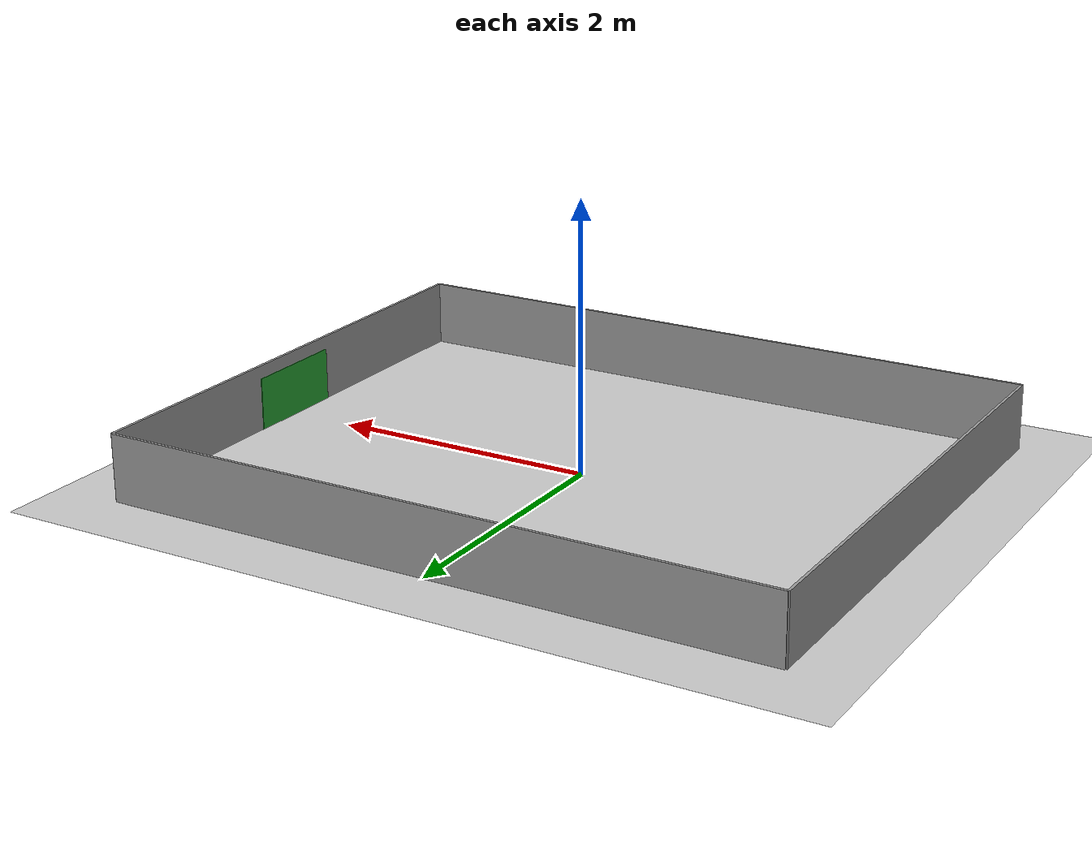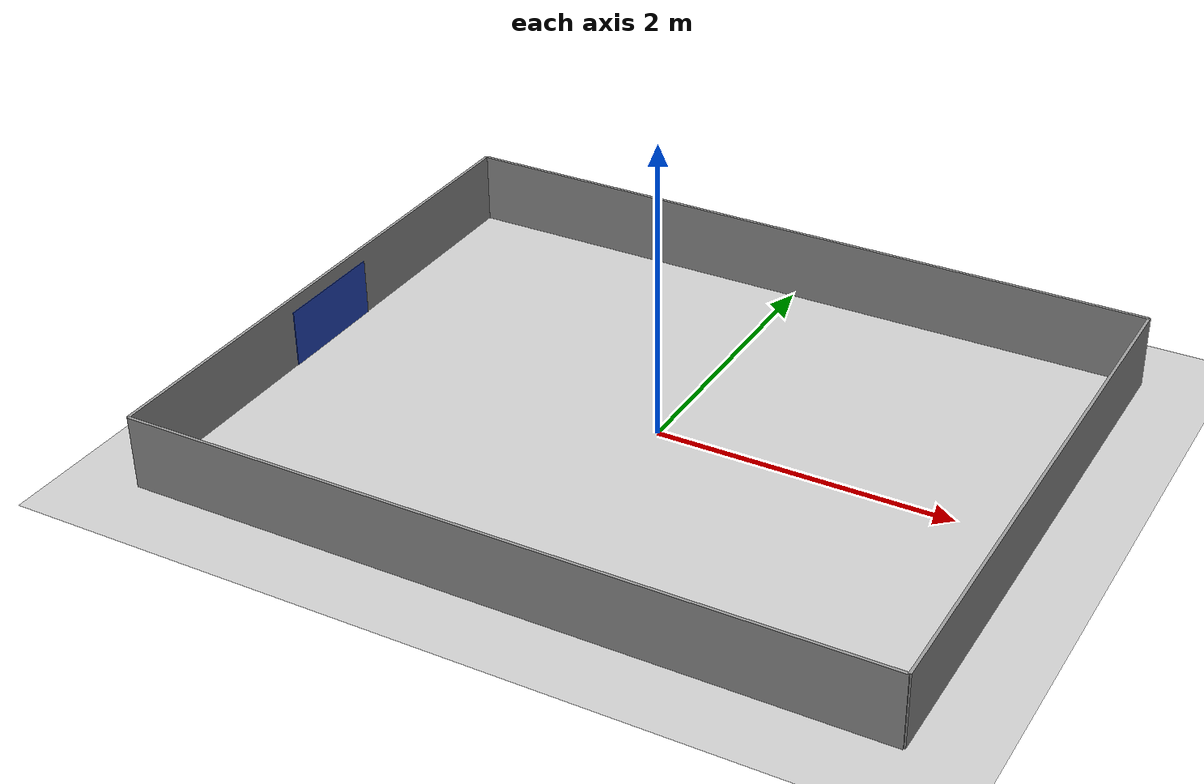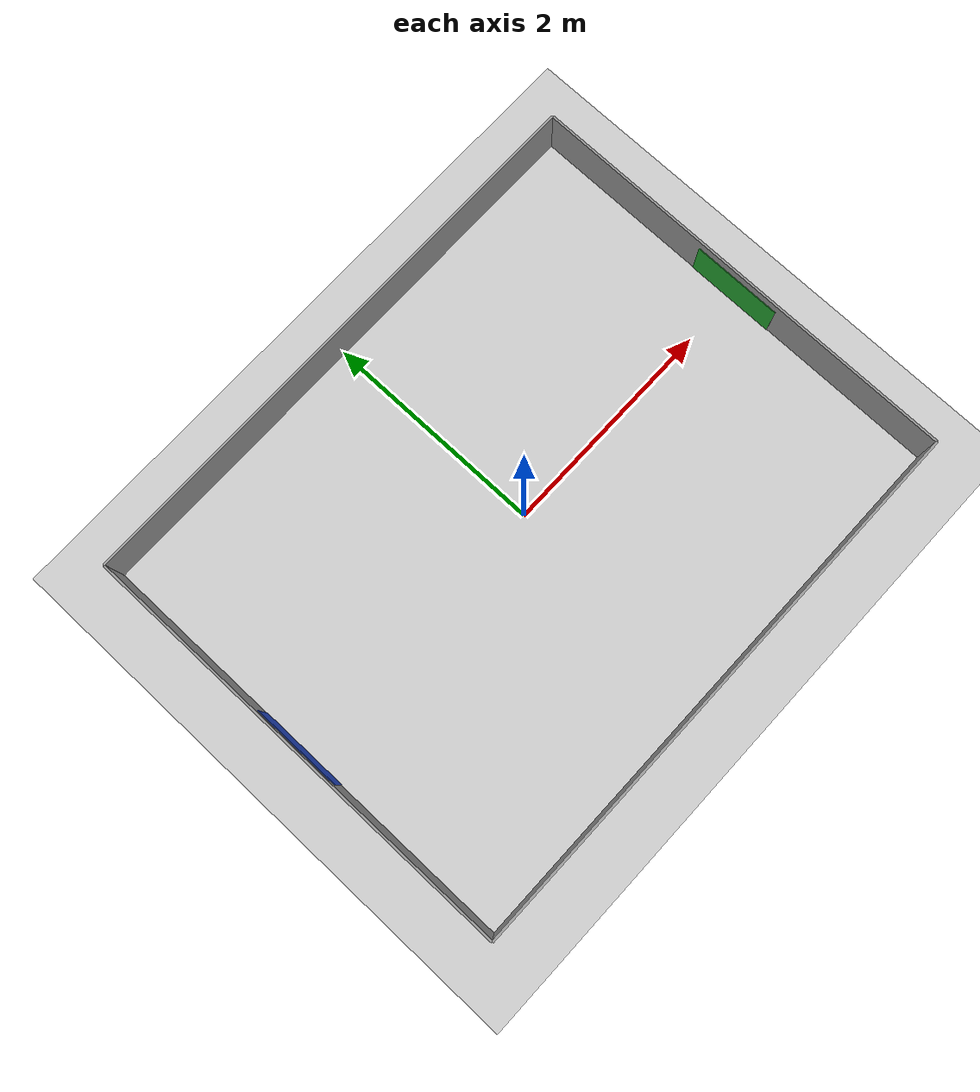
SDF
<?xml version="1.0" ?>
<sdf version="1.5">
  <model name="aip_field_line">
    <pose>0 0 0 0 0 0</pose>
    <static>true</static>
    <link name="field">
      <pose>0 0 0.01 0 0 0</pose>
      <collision name="collision">
        <geometry>
          <plane>
            <normal>0 0 1</normal>
            <size>6 5</size>
          </plane>
        </geometry>
        <surface>
          <friction>
            <ode>
              <mu>100</mu>
              <mu2>50</mu2>
            </ode>
          </friction>
        </surface>
      </collision>
      <visual name="carpet">
        <cast_shadows>false</cast_shadows>
        <geometry>
          <plane>
            <normal>0 0 1</normal>
            <size>6 5</size>
          </plane>
        </geometry>
        <material>
          <script>
            <uri>model://aip_field_line/materials/scripts/</uri>
            <uri>model://aip_field_line/materials/textures/</uri>
            <name>AIP_Field_line/Image</name>
          </script>
        </material>
      </visual>
    </link>

    <link name="wall_bottom">
      <pose>0 -2 0.25 0 0 1.570796327</pose>
      <visual name="wall_bottom-visual">
        <geometry>
          <box>
            <size>.02 5 .5</size>
          </box>
        </geometry>
        <cast_shadows>false</cast_shadows>
        <material>
          <script>
            <uri>file://media/materials/scripts/gazebo.material</uri>
            <name>Gazebo/Grey</name>
          </script>
        </material>
      </visual>
      <collision name="wall_bottom-collision">
        <geometry>
          <box>
            <size>.02 5 .5</size>
          </box>
        </geometry>
      </collision>
    </link>

    <link name="wall_top">
      <pose>0 2 0.25 0 0 1.570796327</pose>
      <visual name="wall_top-visual">
        <geometry>
          <box>
            <size>.02 5 .5</size>
          </box>
        </geometry>
        <cast_shadows>false</cast_shadows>
        <material>
          <script>
            <uri>file://media/materials/scripts/gazebo.material</uri>
            <name>Gazebo/Grey</name>
          </script>
        </material>
      </visual>
      <collision name="wall_top-collision">
        <geometry>
          <box>
            <size>.02 5 .5</size>
          </box>
        </geometry>
      </collision>
    </link>

    <link name="wall_left">
      <pose>-2.5 0 0.25 0 0 0</pose>
      <visual name="wall_left-visual">
        <geometry>
          <box>
            <size>.02 4 .5</size>
          </box>
        </geometry>
        <cast_shadows>false</cast_shadows>
        <material>
          <script>
            <uri>file://media/materials/scripts/gazebo.material</uri>
            <name>Gazebo/Grey</name>
          </script>
        </material>
      </visual>
      <collision name="wall_left-collision">
        <geometry>
          <box>
            <size>.02 4 .5</size>
          </box>
        </geometry>
      </collision>
    </link>

    <link name="wall_right">
      <pose>2.5 0 0.25 0 0 0</pose>
      <visual name="wall_right-visual">
        <geometry>
          <box>
            <size>.02 4 .5</size>
          </box>
        </geometry>
        <cast_shadows>false</cast_shadows>
        <material>
          <script>
            <uri>file://media/materials/scripts/gazebo.material</uri>
            <name>Gazebo/Grey</name>
          </script>
        </material>
      </visual>
      <collision name="wall_right-collision">
        <geometry>
          <box>
            <size>.02 4 .5</size>
          </box>
        </geometry>
      </collision>
    </link>

    <link name="goal_left">
      <pose>-2.49 0 0.2 0 0 0</pose>
      <visual name="goal_left-visual">
        <geometry>
          <box>
            <size>.01 .8 .4</size>
          </box>
        </geometry>
        <cast_shadows>false</cast_shadows>
        <material>
          <script>
            <uri>file://media/materials/scripts/gazebo.material</uri>
            <name>Gazebo/Blue</name>
          </script>
        </material>
      </visual>
      <collision name="goal_left-collision">
        <geometry>
          <box>
            <size>.01 .8 .4</size>
          </box>
        </geometry>
      </collision>
    </link>

    <link name="goal_right">
      <pose>2.49 0 0.2 0 0 0</pose>
      <visual name="goal_right-visual">
        <geometry>
          <box>
            <size>.01 .8 .4</size>
          </box>
        </geometry>
        <cast_shadows>false</cast_shadows>
        <material>
          <script>
            <uri>file://media/materials/scripts/gazebo.material</uri>
            <name>Gazebo/Green</name>
          </script>
        </material>
      </visual>
      <collision name="goal_right-collision">
        <geometry>
          <box>
            <size>.01 .8 .4</size>
          </box>
        </geometry>
      </collision>
    </link>

  </model>
</sdf>
